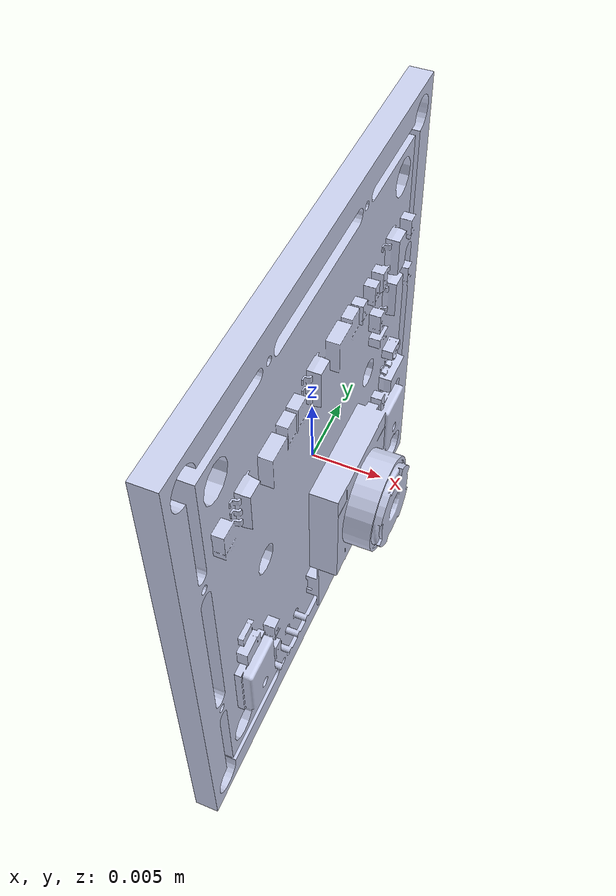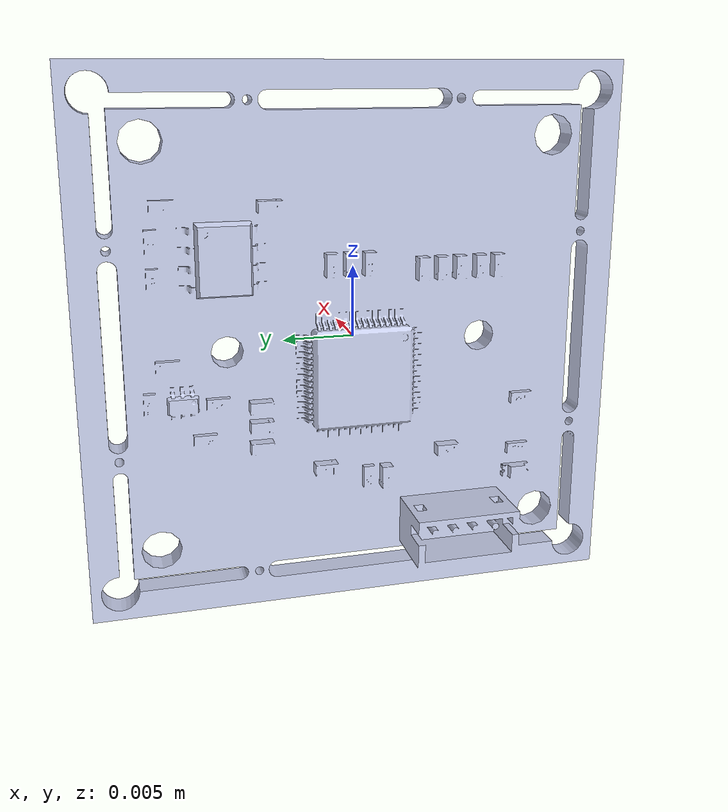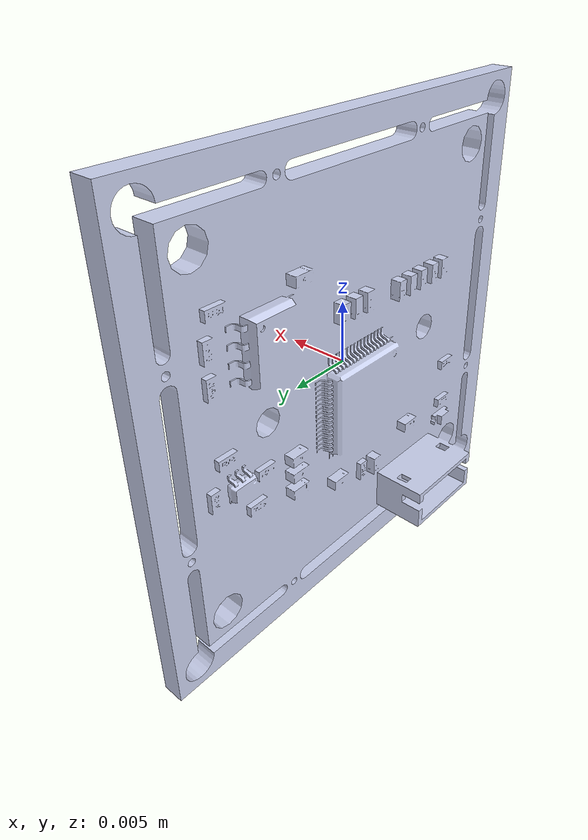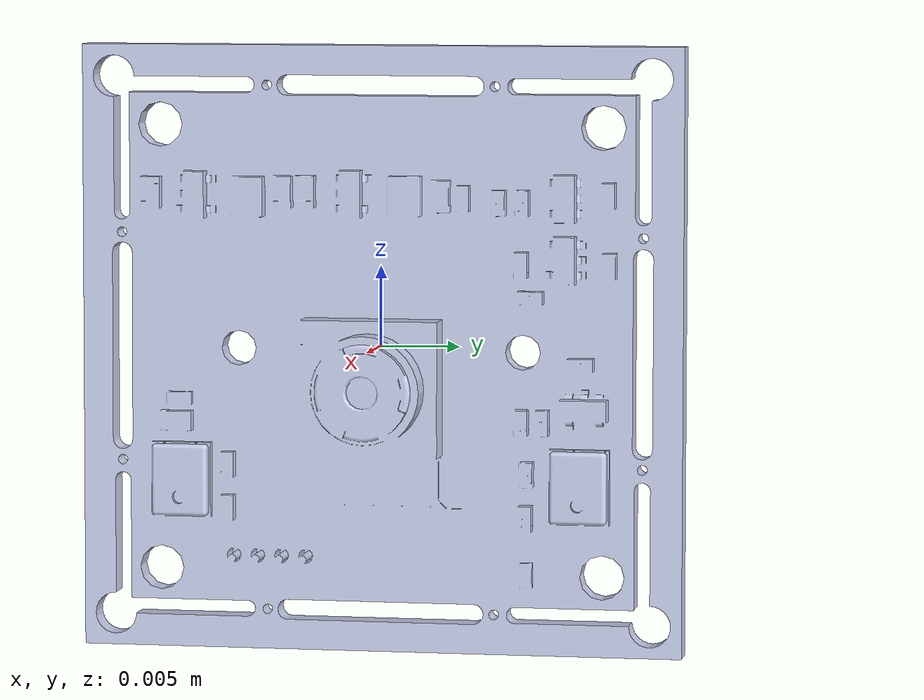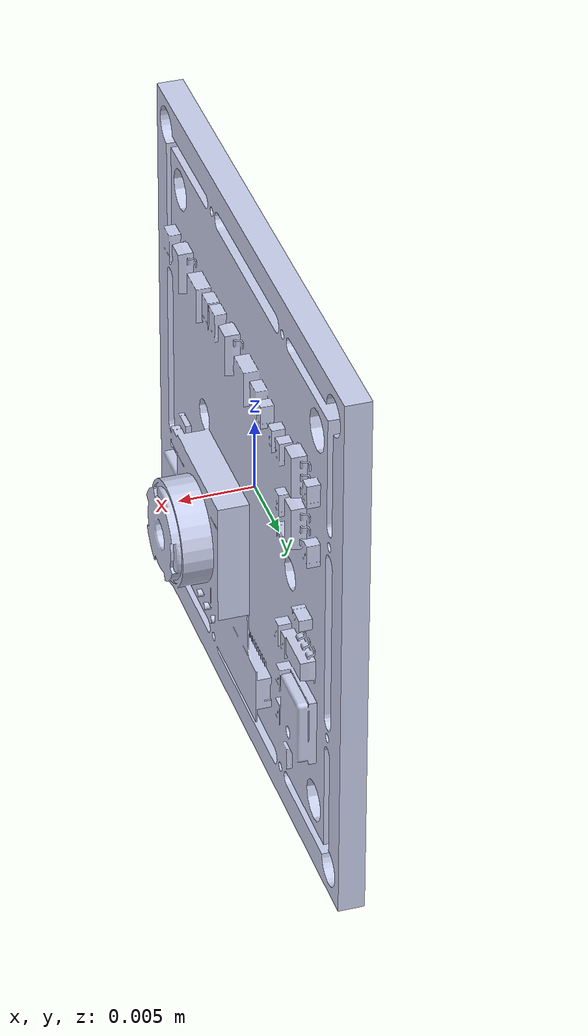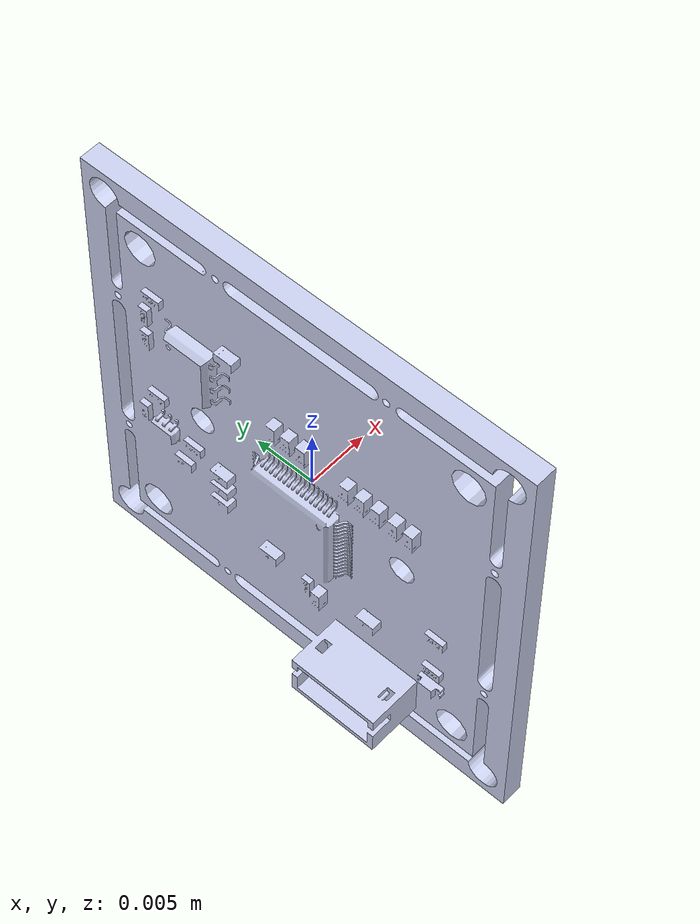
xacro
<?xml version="1.0" encoding="utf-8"?>
<robot xmlns:xacro="http://ros.org/wiki/xacro">

  <link name="adrucam_base_link"/>

	<joint name="adrucam_mesh_joint" type="fixed">
	  <origin
      xyz="0 0 0"
      rpy="0 0 0" />

	  <parent link="adrucam_base_link" />
	  <child link="adrucam_mesh_base_link" />
	</joint>

  <link name="adrucam">
    <origin rpy="0 0 0"/>
  </link>

  <joint name="adrucam_joint" type="fixed">
	  <origin
      xyz="0.002 0 -0.0025"
      rpy="${pi/2} ${pi} ${pi/2}"/>
	  <parent link="adrucam_base_link" />
	  <child link="adrucam" />
	</joint>

  <link
    name="adrucam_mesh_base_link">
    <visual>
      <origin
        xyz="-0.068 -0.0145 -0.0765"
        rpy="0 ${pi} ${pi/2}" />
      <geometry>
        <mesh
          filename="package://adrucam/meshes/base_link.STL" />
      </geometry>
      <material
        name="">
        <color
          rgba="0.792156862745098 0.819607843137255 0.933333333333333 1" />
      </material>
    </visual>
    <collision>
      <origin
        xyz="-0.068 -0.0145 -0.0765"
        rpy="0 ${pi} ${pi/2}" />
      <geometry>
        <mesh
          filename="package://adrucam/meshes/base_link.STL" />
      </geometry>
    </collision>
  </link>
</robot>
